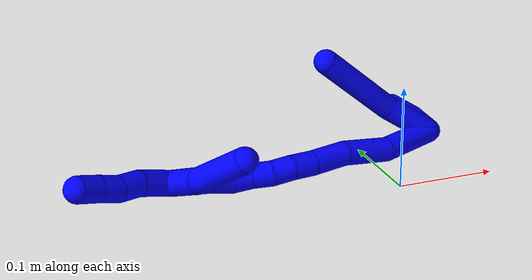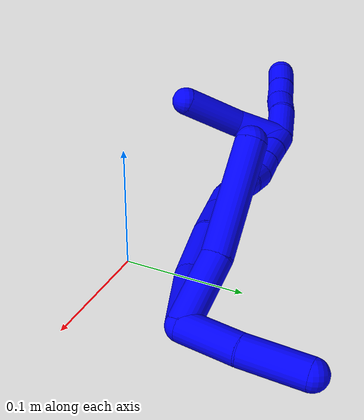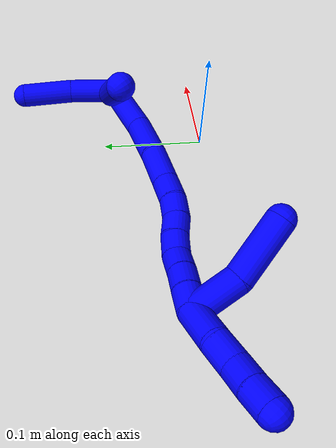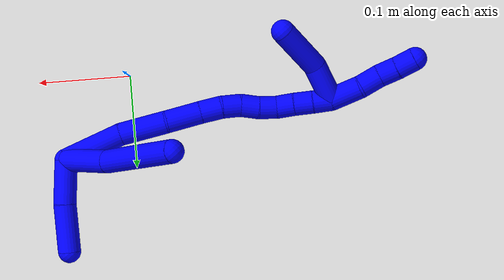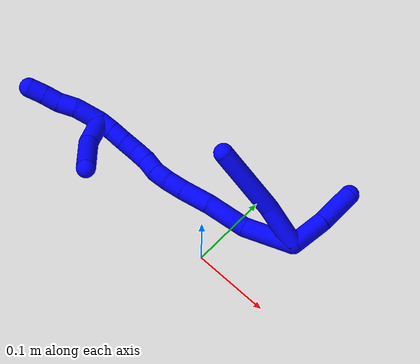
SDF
<sdf version="1.7">
 <world name="default">
  <model name="1">
   <static>0</static>
   <link name="1">
    <collision name="collision-cylinder-e_1_2_8">
     <pose>-0.017958 -0.016529 0.014412 0.853694 -0.686164 -0.32211</pose>
     <geometry><cylinder><radius>0.0125</radius><length>0.056689</length></cylinder></geometry>
     <surface>
      <friction><ode><mu>1.16</mu><mu2>1.16</mu2><slip1>0</slip1><slip2>0</slip2></ode></friction>
      <contact><ode><kp>1e+06</kp><kd>1</kd><max_vel>0</max_vel><min_depth>0.001</min_depth></ode></contact>
     </surface>
    </collision>
    <visual name="visual-cylinder-e_1_2_8">
     <pose>-0.017958 -0.016529 0.014412 0.853694 -0.686164 -0.32211</pose>
     <geometry><cylinder><radius>0.0125</radius><length>0.056689</length></cylinder></geometry>
     <material><ambient>0 0 1 1</ambient></material>
    </visual>
    <collision name="collision-cylinder-e_2_8_6">
     <pose>-0.067518 -0.063413 0.044845 1.08519 -0.744131 -0.462194</pose>
     <geometry><cylinder><radius>0.0125</radius><length>0.093311</length></cylinder></geometry>
     <surface>
      <friction><ode><mu>1.16</mu><mu2>1.16</mu2><slip1>0</slip1><slip2>0</slip2></ode></friction>
      <contact><ode><kp>1e+06</kp><kd>1</kd><max_vel>0</max_vel><min_depth>0.001</min_depth></ode></contact>
     </surface>
    </collision>
    <visual name="visual-cylinder-e_2_8_6">
     <pose>-0.067518 -0.063413 0.044845 1.08519 -0.744131 -0.462194</pose>
     <geometry><cylinder><radius>0.0125</radius><length>0.093311</length></cylinder></geometry>
     <material><ambient>0 0 1 1</ambient></material>
    </visual>
    <collision name="collision-cylinder-e_1_2_9">
     <pose>0.016632 -0.002383 0.016977 0.139451 0.770256 0.056606</pose>
     <geometry><cylinder><radius>0.0125</radius><length>0.047771</length></cylinder></geometry>
     <surface>
      <friction><ode><mu>1.16</mu><mu2>1.16</mu2><slip1>0</slip1><slip2>0</slip2></ode></friction>
      <contact><ode><kp>1e+06</kp><kd>1</kd><max_vel>0</max_vel><min_depth>0.001</min_depth></ode></contact>
     </surface>
    </collision>
    <visual name="visual-cylinder-e_1_2_9">
     <pose>0.016632 -0.002383 0.016977 0.139451 0.770256 0.056606</pose>
     <geometry><cylinder><radius>0.0125</radius><length>0.047771</length></cylinder></geometry>
     <material><ambient>0 0 1 1</ambient></material>
    </visual>
    <collision name="collision-cylinder-e_2_9_5">
     <pose>0.049063 -0.006918 0.054635 0.103678 0.64977 0.034949</pose>
     <geometry><cylinder><radius>0.0125</radius><length>0.052229</length></cylinder></geometry>
     <surface>
      <friction><ode><mu>1.16</mu><mu2>1.16</mu2><slip1>0</slip1><slip2>0</slip2></ode></friction>
      <contact><ode><kp>1e+06</kp><kd>1</kd><max_vel>0</max_vel><min_depth>0.001</min_depth></ode></contact>
     </surface>
    </collision>
    <visual name="visual-cylinder-e_2_9_5">
     <pose>0.049063 -0.006918 0.054635 0.103678 0.64977 0.034949</pose>
     <geometry><cylinder><radius>0.0125</radius><length>0.052229</length></cylinder></geometry>
     <material><ambient>0 0 1 1</ambient></material>
    </visual>
    <collision name="collision-cylinder-e_1_2_10">
     <pose>-0.03111 0.00229 0.00993 -0.226666 -1.25423 0.164601</pose>
     <geometry><cylinder><radius>0.0125</radius><length>0.065474</length></cylinder></geometry>
     <surface>
      <friction><ode><mu>1.16</mu><mu2>1.16</mu2><slip1>0</slip1><slip2>0</slip2></ode></friction>
      <contact><ode><kp>1e+06</kp><kd>1</kd><max_vel>0</max_vel><min_depth>0.001</min_depth></ode></contact>
     </surface>
    </collision>
    <visual name="visual-cylinder-e_1_2_10">
     <pose>-0.03111 0.00229 0.00993 -0.226666 -1.25423 0.164601</pose>
     <geometry><cylinder><radius>0.0125</radius><length>0.065474</length></cylinder></geometry>
     <material><ambient>0 0 1 1</ambient></material>
    </visual>
    <collision name="collision-cylinder-e_2_10_11">
     <pose>-0.085366 0.000833 0.03139 0.31428 -1.0883 -0.191163</pose>
     <geometry><cylinder><radius>0.0125</radius><length>0.052256</length></cylinder></geometry>
     <surface>
      <friction><ode><mu>1.16</mu><mu2>1.16</mu2><slip1>0</slip1><slip2>0</slip2></ode></friction>
      <contact><ode><kp>1e+06</kp><kd>1</kd><max_vel>0</max_vel><min_depth>0.001</min_depth></ode></contact>
     </surface>
    </collision>
    <visual name="visual-cylinder-e_2_10_11">
     <pose>-0.085366 0.000833 0.03139 0.31428 -1.0883 -0.191163</pose>
     <geometry><cylinder><radius>0.0125</radius><length>0.052256</length></cylinder></geometry>
     <material><ambient>0 0 1 1</ambient></material>
    </visual>
    <collision name="collision-cylinder-e_3_11_12">
     <pose>-0.125445 -0.002049 0.051614 -0.099276 -1.09445 0.06052</pose>
     <geometry><cylinder><radius>0.0125</radius><length>0.038109</length></cylinder></geometry>
     <surface>
      <friction><ode><mu>1.16</mu><mu2>1.16</mu2><slip1>0</slip1><slip2>0</slip2></ode></friction>
      <contact><ode><kp>1e+06</kp><kd>1</kd><max_vel>0</max_vel><min_depth>0.001</min_depth></ode></contact>
     </surface>
    </collision>
    <visual name="visual-cylinder-e_3_11_12">
     <pose>-0.125445 -0.002049 0.051614 -0.099276 -1.09445 0.06052</pose>
     <geometry><cylinder><radius>0.0125</radius><length>0.038109</length></cylinder></geometry>
     <material><ambient>0 0 1 1</ambient></material>
    </visual>
    <collision name="collision-cylinder-e_4_12_13">
     <pose>-0.152791 -0.001547 0.065908 0.064934 -1.07648 -0.038777</pose>
     <geometry><cylinder><radius>0.0125</radius><length>0.023657</length></cylinder></geometry>
     <surface>
      <friction><ode><mu>1.16</mu><mu2>1.16</mu2><slip1>0</slip1><slip2>0</slip2></ode></friction>
      <contact><ode><kp>1e+06</kp><kd>1</kd><max_vel>0</max_vel><min_depth>0.001</min_depth></ode></contact>
     </surface>
    </collision>
    <visual name="visual-cylinder-e_4_12_13">
     <pose>-0.152791 -0.001547 0.065908 0.064934 -1.07648 -0.038777</pose>
     <geometry><cylinder><radius>0.0125</radius><length>0.023657</length></cylinder></geometry>
     <material><ambient>0 0 1 1</ambient></material>
    </visual>
    <collision name="collision-cylinder-e_5_13_14">
     <pose>-0.17131 -0.000953 0.077697 -0.153568 -0.912991 0.075528</pose>
     <geometry><cylinder><radius>0.0125</radius><length>0.020489</length></cylinder></geometry>
     <surface>
      <friction><ode><mu>1.16</mu><mu2>1.16</mu2><slip1>0</slip1><slip2>0</slip2></ode></friction>
      <contact><ode><kp>1e+06</kp><kd>1</kd><max_vel>0</max_vel><min_depth>0.001</min_depth></ode></contact>
     </surface>
    </collision>
    <visual name="visual-cylinder-e_5_13_14">
     <pose>-0.17131 -0.000953 0.077697 -0.153568 -0.912991 0.075528</pose>
     <geometry><cylinder><radius>0.0125</radius><length>0.020489</length></cylinder></geometry>
     <material><ambient>0 0 1 1</ambient></material>
    </visual>
    <collision name="collision-cylinder-e_6_14_15">
     <pose>-0.185861 -3e-05 0.091534 0.004593 -0.700223 -0.001677</pose>
     <geometry><cylinder><radius>0.0125</radius><length>0.02</length></cylinder></geometry>
     <surface>
      <friction><ode><mu>1.16</mu><mu2>1.16</mu2><slip1>0</slip1><slip2>0</slip2></ode></friction>
      <contact><ode><kp>1e+06</kp><kd>1</kd><max_vel>0</max_vel><min_depth>0.001</min_depth></ode></contact>
     </surface>
    </collision>
    <visual name="visual-cylinder-e_6_14_15">
     <pose>-0.185861 -3e-05 0.091534 0.004593 -0.700223 -0.001677</pose>
     <geometry><cylinder><radius>0.0125</radius><length>0.02</length></cylinder></geometry>
     <material><ambient>0 0 1 1</ambient></material>
    </visual>
    <collision name="collision-cylinder-e_7_15_16">
     <pose>-0.199757 0.000527 0.105827 -0.08893 -0.840542 0.039764</pose>
     <geometry><cylinder><radius>0.0125</radius><length>0.020006</length></cylinder></geometry>
     <surface>
      <friction><ode><mu>1.16</mu><mu2>1.16</mu2><slip1>0</slip1><slip2>0</slip2></ode></friction>
      <contact><ode><kp>1e+06</kp><kd>1</kd><max_vel>0</max_vel><min_depth>0.001</min_depth></ode></contact>
     </surface>
    </collision>
    <visual name="visual-cylinder-e_7_15_16">
     <pose>-0.199757 0.000527 0.105827 -0.08893 -0.840542 0.039764</pose>
     <geometry><cylinder><radius>0.0125</radius><length>0.020006</length></cylinder></geometry>
     <material><ambient>0 0 1 1</ambient></material>
    </visual>
    <collision name="collision-cylinder-e_8_16_17">
     <pose>-0.215519 -0.001143 0.117558 0.418658 -0.980638 -0.225837</pose>
     <geometry><cylinder><radius>0.0125</radius><length>0.020004</length></cylinder></geometry>
     <surface>
      <friction><ode><mu>1.16</mu><mu2>1.16</mu2><slip1>0</slip1><slip2>0</slip2></ode></friction>
      <contact><ode><kp>1e+06</kp><kd>1</kd><max_vel>0</max_vel><min_depth>0.001</min_depth></ode></contact>
     </surface>
    </collision>
    <visual name="visual-cylinder-e_8_16_17">
     <pose>-0.215519 -0.001143 0.117558 0.418658 -0.980638 -0.225837</pose>
     <geometry><cylinder><radius>0.0125</radius><length>0.020004</length></cylinder></geometry>
     <material><ambient>0 0 1 1</ambient></material>
    </visual>
    <collision name="collision-cylinder-e_9_17_18">
     <pose>-0.231933 -0.005147 0.12824 0.301662 -0.944573 -0.154971</pose>
     <geometry><cylinder><radius>0.0125</radius><length>0.020001</length></cylinder></geometry>
     <surface>
      <friction><ode><mu>1.16</mu><mu2>1.16</mu2><slip1>0</slip1><slip2>0</slip2></ode></friction>
      <contact><ode><kp>1e+06</kp><kd>1</kd><max_vel>0</max_vel><min_depth>0.001</min_depth></ode></contact>
     </surface>
    </collision>
    <visual name="visual-cylinder-e_9_17_18">
     <pose>-0.231933 -0.005147 0.12824 0.301662 -0.944573 -0.154971</pose>
     <geometry><cylinder><radius>0.0125</radius><length>0.020001</length></cylinder></geometry>
     <material><ambient>0 0 1 1</ambient></material>
    </visual>
    <collision name="collision-cylinder-e_10_18_1">
     <pose>-0.248323 -0.007901 0.139344 0.181856 -0.976625 -0.096798</pose>
     <geometry><cylinder><radius>0.0125</radius><length>0.020004</length></cylinder></geometry>
     <surface>
      <friction><ode><mu>1.16</mu><mu2>1.16</mu2><slip1>0</slip1><slip2>0</slip2></ode></friction>
      <contact><ode><kp>1e+06</kp><kd>1</kd><max_vel>0</max_vel><min_depth>0.001</min_depth></ode></contact>
     </surface>
    </collision>
    <visual name="visual-cylinder-e_10_18_1">
     <pose>-0.248323 -0.007901 0.139344 0.181856 -0.976625 -0.096798</pose>
     <geometry><cylinder><radius>0.0125</radius><length>0.020004</length></cylinder></geometry>
     <material><ambient>0 0 1 1</ambient></material>
    </visual>
    <collision name="collision-cylinder-e_1_1_19">
     <pose>-0.272541 -0.013643 0.149703 0.772515 -1.16865 -0.525502</pose>
     <geometry><cylinder><radius>0.0125</radius><length>0.034623</length></cylinder></geometry>
     <surface>
      <friction><ode><mu>1.16</mu><mu2>1.16</mu2><slip1>0</slip1><slip2>0</slip2></ode></friction>
      <contact><ode><kp>1e+06</kp><kd>1</kd><max_vel>0</max_vel><min_depth>0.001</min_depth></ode></contact>
     </surface>
    </collision>
    <visual name="visual-cylinder-e_1_1_19">
     <pose>-0.272541 -0.013643 0.149703 0.772515 -1.16865 -0.525502</pose>
     <geometry><cylinder><radius>0.0125</radius><length>0.034623</length></cylinder></geometry>
     <material><ambient>0 0 1 1</ambient></material>
    </visual>
    <collision name="collision-cylinder-e_2_19_20">
     <pose>-0.299927 -0.018977 0.15691 0.251768 -1.36166 -0.204311</pose>
     <geometry><cylinder><radius>0.0125</radius><length>0.02342</length></cylinder></geometry>
     <surface>
      <friction><ode><mu>1.16</mu><mu2>1.16</mu2><slip1>0</slip1><slip2>0</slip2></ode></friction>
      <contact><ode><kp>1e+06</kp><kd>1</kd><max_vel>0</max_vel><min_depth>0.001</min_depth></ode></contact>
     </surface>
    </collision>
    <visual name="visual-cylinder-e_2_19_20">
     <pose>-0.299927 -0.018977 0.15691 0.251768 -1.36166 -0.204311</pose>
     <geometry><cylinder><radius>0.0125</radius><length>0.02342</length></cylinder></geometry>
     <material><ambient>0 0 1 1</ambient></material>
    </visual>
    <collision name="collision-cylinder-e_3_20_21">
     <pose>-0.320998 -0.022511 0.16209 0.803235 -1.17055 -0.54873</pose>
     <geometry><cylinder><radius>0.0125</radius><length>0.020884</length></cylinder></geometry>
     <surface>
      <friction><ode><mu>1.16</mu><mu2>1.16</mu2><slip1>0</slip1><slip2>0</slip2></ode></friction>
      <contact><ode><kp>1e+06</kp><kd>1</kd><max_vel>0</max_vel><min_depth>0.001</min_depth></ode></contact>
     </surface>
    </collision>
    <visual name="visual-cylinder-e_3_20_21">
     <pose>-0.320998 -0.022511 0.16209 0.803235 -1.17055 -0.54873</pose>
     <geometry><cylinder><radius>0.0125</radius><length>0.020884</length></cylinder></geometry>
     <material><ambient>0 0 1 1</ambient></material>
    </visual>
    <collision name="collision-cylinder-e_4_21_4">
     <pose>-0.340576 -0.028037 0.167161 0.857956 -1.23882 -0.630494</pose>
     <geometry><cylinder><radius>0.0125</radius><length>0.021073</length></cylinder></geometry>
     <surface>
      <friction><ode><mu>1.16</mu><mu2>1.16</mu2><slip1>0</slip1><slip2>0</slip2></ode></friction>
      <contact><ode><kp>1e+06</kp><kd>1</kd><max_vel>0</max_vel><min_depth>0.001</min_depth></ode></contact>
     </surface>
    </collision>
    <visual name="visual-cylinder-e_4_21_4">
     <pose>-0.340576 -0.028037 0.167161 0.857956 -1.23882 -0.630494</pose>
     <geometry><cylinder><radius>0.0125</radius><length>0.021073</length></cylinder></geometry>
     <material><ambient>0 0 1 1</ambient></material>
    </visual>
    <collision name="collision-cylinder-e_1_1_22">
     <pose>-0.261856 -0.013621 0.124397 2.9154 -0.244895 -1.65089</pose>
     <geometry><cylinder><radius>0.0125</radius><length>0.043266</length></cylinder></geometry>
     <surface>
      <friction><ode><mu>1.16</mu><mu2>1.16</mu2><slip1>0</slip1><slip2>0</slip2></ode></friction>
      <contact><ode><kp>1e+06</kp><kd>1</kd><max_vel>0</max_vel><min_depth>0.001</min_depth></ode></contact>
     </surface>
    </collision>
    <visual name="visual-cylinder-e_1_1_22">
     <pose>-0.261856 -0.013621 0.124397 2.9154 -0.244895 -1.65089</pose>
     <geometry><cylinder><radius>0.0125</radius><length>0.043266</length></cylinder></geometry>
     <material><ambient>0 0 1 1</ambient></material>
    </visual>
    <collision name="collision-cylinder-e_2_22_3">
     <pose>-0.26606 -0.029555 0.077915 2.73437 0.036686 0.177234</pose>
     <geometry><cylinder><radius>0.0125</radius><length>0.056734</length></cylinder></geometry>
     <surface>
      <friction><ode><mu>1.16</mu><mu2>1.16</mu2><slip1>0</slip1><slip2>0</slip2></ode></friction>
      <contact><ode><kp>1e+06</kp><kd>1</kd><max_vel>0</max_vel><min_depth>0.001</min_depth></ode></contact>
     </surface>
    </collision>
    <visual name="visual-cylinder-e_2_22_3">
     <pose>-0.26606 -0.029555 0.077915 2.73437 0.036686 0.177234</pose>
     <geometry><cylinder><radius>0.0125</radius><length>0.056734</length></cylinder></geometry>
     <material><ambient>0 0 1 1</ambient></material>
    </visual>
    <collision name="collision-sphere-3">
     <pose>-0.26502 -0.040782 0.051885 0 -0 0</pose>
     <geometry><sphere><radius>0.0125</radius></sphere></geometry>
     <surface>
      <friction><ode><mu>1.16</mu><mu2>1.16</mu2><slip1>0</slip1><slip2>0</slip2></ode></friction>
      <contact><ode><kp>1e+06</kp><kd>1</kd><max_vel>0</max_vel><min_depth>0.001</min_depth></ode></contact>
     </surface>
    </collision>
    <visual name="visual-sphere-3">
     <pose>-0.26502 -0.040782 0.051885 0 -0 0</pose>
     <geometry><sphere><radius>0.0125</radius></sphere></geometry>
     <material><ambient>0 0 1 1</ambient></material>
    </visual>
    <collision name="collision-sphere-22">
     <pose>-0.267101 -0.018328 0.103944 0 -0 0</pose>
     <geometry><sphere><radius>0.0125</radius></sphere></geometry>
     <surface>
      <friction><ode><mu>1.16</mu><mu2>1.16</mu2><slip1>0</slip1><slip2>0</slip2></ode></friction>
      <contact><ode><kp>1e+06</kp><kd>1</kd><max_vel>0</max_vel><min_depth>0.001</min_depth></ode></contact>
     </surface>
    </collision>
    <visual name="visual-sphere-22">
     <pose>-0.267101 -0.018328 0.103944 0 -0 0</pose>
     <geometry><sphere><radius>0.0125</radius></sphere></geometry>
     <material><ambient>0 0 1 1</ambient></material>
    </visual>
    <collision name="collision-sphere-4">
     <pose>-0.350537 -0.030634 0.169407 0 -0 0</pose>
     <geometry><sphere><radius>0.0125</radius></sphere></geometry>
     <surface>
      <friction><ode><mu>1.16</mu><mu2>1.16</mu2><slip1>0</slip1><slip2>0</slip2></ode></friction>
      <contact><ode><kp>1e+06</kp><kd>1</kd><max_vel>0</max_vel><min_depth>0.001</min_depth></ode></contact>
     </surface>
    </collision>
    <visual name="visual-sphere-4">
     <pose>-0.350537 -0.030634 0.169407 0 -0 0</pose>
     <geometry><sphere><radius>0.0125</radius></sphere></geometry>
     <material><ambient>0 0 1 1</ambient></material>
    </visual>
    <collision name="collision-sphere-21">
     <pose>-0.330615 -0.025439 0.164915 0 -0 0</pose>
     <geometry><sphere><radius>0.0125</radius></sphere></geometry>
     <surface>
      <friction><ode><mu>1.16</mu><mu2>1.16</mu2><slip1>0</slip1><slip2>0</slip2></ode></friction>
      <contact><ode><kp>1e+06</kp><kd>1</kd><max_vel>0</max_vel><min_depth>0.001</min_depth></ode></contact>
     </surface>
    </collision>
    <visual name="visual-sphere-21">
     <pose>-0.330615 -0.025439 0.164915 0 -0 0</pose>
     <geometry><sphere><radius>0.0125</radius></sphere></geometry>
     <material><ambient>0 0 1 1</ambient></material>
    </visual>
    <collision name="collision-sphere-20">
     <pose>-0.311381 -0.019583 0.159265 0 -0 0</pose>
     <geometry><sphere><radius>0.0125</radius></sphere></geometry>
     <surface>
      <friction><ode><mu>1.16</mu><mu2>1.16</mu2><slip1>0</slip1><slip2>0</slip2></ode></friction>
      <contact><ode><kp>1e+06</kp><kd>1</kd><max_vel>0</max_vel><min_depth>0.001</min_depth></ode></contact>
     </surface>
    </collision>
    <visual name="visual-sphere-20">
     <pose>-0.311381 -0.019583 0.159265 0 -0 0</pose>
     <geometry><sphere><radius>0.0125</radius></sphere></geometry>
     <material><ambient>0 0 1 1</ambient></material>
    </visual>
    <collision name="collision-sphere-10">
     <pose>-0.062221 0.00458 0.019861 0 -0 0</pose>
     <geometry><sphere><radius>0.0125</radius></sphere></geometry>
     <surface>
      <friction><ode><mu>1.16</mu><mu2>1.16</mu2><slip1>0</slip1><slip2>0</slip2></ode></friction>
      <contact><ode><kp>1e+06</kp><kd>1</kd><max_vel>0</max_vel><min_depth>0.001</min_depth></ode></contact>
     </surface>
    </collision>
    <visual name="visual-sphere-10">
     <pose>-0.062221 0.00458 0.019861 0 -0 0</pose>
     <geometry><sphere><radius>0.0125</radius></sphere></geometry>
     <material><ambient>0 0 1 1</ambient></material>
    </visual>
    <collision name="collision-sphere-5">
     <pose>0.064863 -0.00907 0.075317 0 -0 0</pose>
     <geometry><sphere><radius>0.0125</radius></sphere></geometry>
     <surface>
      <friction><ode><mu>1.16</mu><mu2>1.16</mu2><slip1>0</slip1><slip2>0</slip2></ode></friction>
      <contact><ode><kp>1e+06</kp><kd>1</kd><max_vel>0</max_vel><min_depth>0.001</min_depth></ode></contact>
     </surface>
    </collision>
    <visual name="visual-sphere-5">
     <pose>0.064863 -0.00907 0.075317 0 -0 0</pose>
     <geometry><sphere><radius>0.0125</radius></sphere></geometry>
     <material><ambient>0 0 1 1</ambient></material>
    </visual>
    <collision name="collision-sphere-6">
     <pose>-0.099119 -0.093768 0.060865 0 -0 0</pose>
     <geometry><sphere><radius>0.0125</radius></sphere></geometry>
     <surface>
      <friction><ode><mu>1.16</mu><mu2>1.16</mu2><slip1>0</slip1><slip2>0</slip2></ode></friction>
      <contact><ode><kp>1e+06</kp><kd>1</kd><max_vel>0</max_vel><min_depth>0.001</min_depth></ode></contact>
     </surface>
    </collision>
    <visual name="visual-sphere-6">
     <pose>-0.099119 -0.093768 0.060865 0 -0 0</pose>
     <geometry><sphere><radius>0.0125</radius></sphere></geometry>
     <material><ambient>0 0 1 1</ambient></material>
    </visual>
    <collision name="collision-sphere-9">
     <pose>0.033264 -0.004766 0.033954 0 -0 0</pose>
     <geometry><sphere><radius>0.0125</radius></sphere></geometry>
     <surface>
      <friction><ode><mu>1.16</mu><mu2>1.16</mu2><slip1>0</slip1><slip2>0</slip2></ode></friction>
      <contact><ode><kp>1e+06</kp><kd>1</kd><max_vel>0</max_vel><min_depth>0.001</min_depth></ode></contact>
     </surface>
    </collision>
    <visual name="visual-sphere-9">
     <pose>0.033264 -0.004766 0.033954 0 -0 0</pose>
     <geometry><sphere><radius>0.0125</radius></sphere></geometry>
     <material><ambient>0 0 1 1</ambient></material>
    </visual>
    <collision name="collision-sphere-2">
     <geometry><sphere><radius>0.0125</radius></sphere></geometry>
     <surface>
      <friction><ode><mu>1.16</mu><mu2>1.16</mu2><slip1>0</slip1><slip2>0</slip2></ode></friction>
      <contact><ode><kp>1e+06</kp><kd>1</kd><max_vel>0</max_vel><min_depth>0.001</min_depth></ode></contact>
     </surface>
    </collision>
    <visual name="visual-sphere-2">
     <geometry><sphere><radius>0.0125</radius></sphere></geometry>
     <material><ambient>0 0 1 1</ambient></material>
    </visual>
    <collision name="collision-sphere-19">
     <pose>-0.288472 -0.018372 0.154555 0 -0 0</pose>
     <geometry><sphere><radius>0.0125</radius></sphere></geometry>
     <surface>
      <friction><ode><mu>1.16</mu><mu2>1.16</mu2><slip1>0</slip1><slip2>0</slip2></ode></friction>
      <contact><ode><kp>1e+06</kp><kd>1</kd><max_vel>0</max_vel><min_depth>0.001</min_depth></ode></contact>
     </surface>
    </collision>
    <visual name="visual-sphere-19">
     <pose>-0.288472 -0.018372 0.154555 0 -0 0</pose>
     <geometry><sphere><radius>0.0125</radius></sphere></geometry>
     <material><ambient>0 0 1 1</ambient></material>
    </visual>
    <collision name="collision-sphere-8">
     <pose>-0.035917 -0.033057 0.028824 0 -0 0</pose>
     <geometry><sphere><radius>0.0125</radius></sphere></geometry>
     <surface>
      <friction><ode><mu>1.16</mu><mu2>1.16</mu2><slip1>0</slip1><slip2>0</slip2></ode></friction>
      <contact><ode><kp>1e+06</kp><kd>1</kd><max_vel>0</max_vel><min_depth>0.001</min_depth></ode></contact>
     </surface>
    </collision>
    <visual name="visual-sphere-8">
     <pose>-0.035917 -0.033057 0.028824 0 -0 0</pose>
     <geometry><sphere><radius>0.0125</radius></sphere></geometry>
     <material><ambient>0 0 1 1</ambient></material>
    </visual>
    <collision name="collision-sphere-11">
     <pose>-0.108511 -0.002915 0.042919 0 -0 0</pose>
     <geometry><sphere><radius>0.0125</radius></sphere></geometry>
     <surface>
      <friction><ode><mu>1.16</mu><mu2>1.16</mu2><slip1>0</slip1><slip2>0</slip2></ode></friction>
      <contact><ode><kp>1e+06</kp><kd>1</kd><max_vel>0</max_vel><min_depth>0.001</min_depth></ode></contact>
     </surface>
    </collision>
    <visual name="visual-sphere-11">
     <pose>-0.108511 -0.002915 0.042919 0 -0 0</pose>
     <geometry><sphere><radius>0.0125</radius></sphere></geometry>
     <material><ambient>0 0 1 1</ambient></material>
    </visual>
    <collision name="collision-sphere-12">
     <pose>-0.142378 -0.001183 0.060308 0 -0 0</pose>
     <geometry><sphere><radius>0.0125</radius></sphere></geometry>
     <surface>
      <friction><ode><mu>1.16</mu><mu2>1.16</mu2><slip1>0</slip1><slip2>0</slip2></ode></friction>
      <contact><ode><kp>1e+06</kp><kd>1</kd><max_vel>0</max_vel><min_depth>0.001</min_depth></ode></contact>
     </surface>
    </collision>
    <visual name="visual-sphere-12">
     <pose>-0.142378 -0.001183 0.060308 0 -0 0</pose>
     <geometry><sphere><radius>0.0125</radius></sphere></geometry>
     <material><ambient>0 0 1 1</ambient></material>
    </visual>
    <collision name="collision-sphere-13">
     <pose>-0.163203 -0.001911 0.071508 0 -0 0</pose>
     <geometry><sphere><radius>0.0125</radius></sphere></geometry>
     <surface>
      <friction><ode><mu>1.16</mu><mu2>1.16</mu2><slip1>0</slip1><slip2>0</slip2></ode></friction>
      <contact><ode><kp>1e+06</kp><kd>1</kd><max_vel>0</max_vel><min_depth>0.001</min_depth></ode></contact>
     </surface>
    </collision>
    <visual name="visual-sphere-13">
     <pose>-0.163203 -0.001911 0.071508 0 -0 0</pose>
     <geometry><sphere><radius>0.0125</radius></sphere></geometry>
     <material><ambient>0 0 1 1</ambient></material>
    </visual>
    <collision name="collision-sphere-14">
     <pose>-0.179417 5e-06 0.083887 0 -0 0</pose>
     <geometry><sphere><radius>0.0125</radius></sphere></geometry>
     <surface>
      <friction><ode><mu>1.16</mu><mu2>1.16</mu2><slip1>0</slip1><slip2>0</slip2></ode></friction>
      <contact><ode><kp>1e+06</kp><kd>1</kd><max_vel>0</max_vel><min_depth>0.001</min_depth></ode></contact>
     </surface>
    </collision>
    <visual name="visual-sphere-14">
     <pose>-0.179417 5e-06 0.083887 0 -0 0</pose>
     <geometry><sphere><radius>0.0125</radius></sphere></geometry>
     <material><ambient>0 0 1 1</ambient></material>
    </visual>
    <collision name="collision-sphere-15">
     <pose>-0.192305 -6.5e-05 0.099181 0 -0 0</pose>
     <geometry><sphere><radius>0.0125</radius></sphere></geometry>
     <surface>
      <friction><ode><mu>1.16</mu><mu2>1.16</mu2><slip1>0</slip1><slip2>0</slip2></ode></friction>
      <contact><ode><kp>1e+06</kp><kd>1</kd><max_vel>0</max_vel><min_depth>0.001</min_depth></ode></contact>
     </surface>
    </collision>
    <visual name="visual-sphere-15">
     <pose>-0.192305 -6.5e-05 0.099181 0 -0 0</pose>
     <geometry><sphere><radius>0.0125</radius></sphere></geometry>
     <material><ambient>0 0 1 1</ambient></material>
    </visual>
    <collision name="collision-sphere-16">
     <pose>-0.207209 0.00112 0.112473 0 -0 0</pose>
     <geometry><sphere><radius>0.0125</radius></sphere></geometry>
     <surface>
      <friction><ode><mu>1.16</mu><mu2>1.16</mu2><slip1>0</slip1><slip2>0</slip2></ode></friction>
      <contact><ode><kp>1e+06</kp><kd>1</kd><max_vel>0</max_vel><min_depth>0.001</min_depth></ode></contact>
     </surface>
    </collision>
    <visual name="visual-sphere-16">
     <pose>-0.207209 0.00112 0.112473 0 -0 0</pose>
     <geometry><sphere><radius>0.0125</radius></sphere></geometry>
     <material><ambient>0 0 1 1</ambient></material>
    </visual>
    <collision name="collision-sphere-17">
     <pose>-0.22383 -0.003406 0.122644 0 -0 0</pose>
     <geometry><sphere><radius>0.0125</radius></sphere></geometry>
     <surface>
      <friction><ode><mu>1.16</mu><mu2>1.16</mu2><slip1>0</slip1><slip2>0</slip2></ode></friction>
      <contact><ode><kp>1e+06</kp><kd>1</kd><max_vel>0</max_vel><min_depth>0.001</min_depth></ode></contact>
     </surface>
    </collision>
    <visual name="visual-sphere-17">
     <pose>-0.22383 -0.003406 0.122644 0 -0 0</pose>
     <geometry><sphere><radius>0.0125</radius></sphere></geometry>
     <material><ambient>0 0 1 1</ambient></material>
    </visual>
    <collision name="collision-sphere-18">
     <pose>-0.240036 -0.006888 0.133837 0 -0 0</pose>
     <geometry><sphere><radius>0.0125</radius></sphere></geometry>
     <surface>
      <friction><ode><mu>1.16</mu><mu2>1.16</mu2><slip1>0</slip1><slip2>0</slip2></ode></friction>
      <contact><ode><kp>1e+06</kp><kd>1</kd><max_vel>0</max_vel><min_depth>0.001</min_depth></ode></contact>
     </surface>
    </collision>
    <visual name="visual-sphere-18">
     <pose>-0.240036 -0.006888 0.133837 0 -0 0</pose>
     <geometry><sphere><radius>0.0125</radius></sphere></geometry>
     <material><ambient>0 0 1 1</ambient></material>
    </visual>
    <collision name="collision-sphere-1">
     <pose>-0.256611 -0.008914 0.144851 0 -0 0</pose>
     <geometry><sphere><radius>0.0125</radius></sphere></geometry>
     <surface>
      <friction><ode><mu>1.16</mu><mu2>1.16</mu2><slip1>0</slip1><slip2>0</slip2></ode></friction>
      <contact><ode><kp>1e+06</kp><kd>1</kd><max_vel>0</max_vel><min_depth>0.001</min_depth></ode></contact>
     </surface>
    </collision>
    <visual name="visual-sphere-1">
     <pose>-0.256611 -0.008914 0.144851 0 -0 0</pose>
     <geometry><sphere><radius>0.0125</radius></sphere></geometry>
     <material><ambient>0 0 1 1</ambient></material>
    </visual>
    <inertial>
     <pose>-0.134347 -0.015717 0.07106 0 -0 0</pose>
     <mass>0.75</mass>
     <inertia><ixx>5.7e-05</ixx><ixy>0</ixy><ixz>0</ixz><iyy>9.2e-05</iyy><iyz>0</iyz><izz>0.000192</izz></inertia>
    </inertial>
   </link>
   <pose>0.075104 0.085958 0.016699 -1.70165 0.05189 0.660395</pose>
  </model>
 </world>
</sdf>
